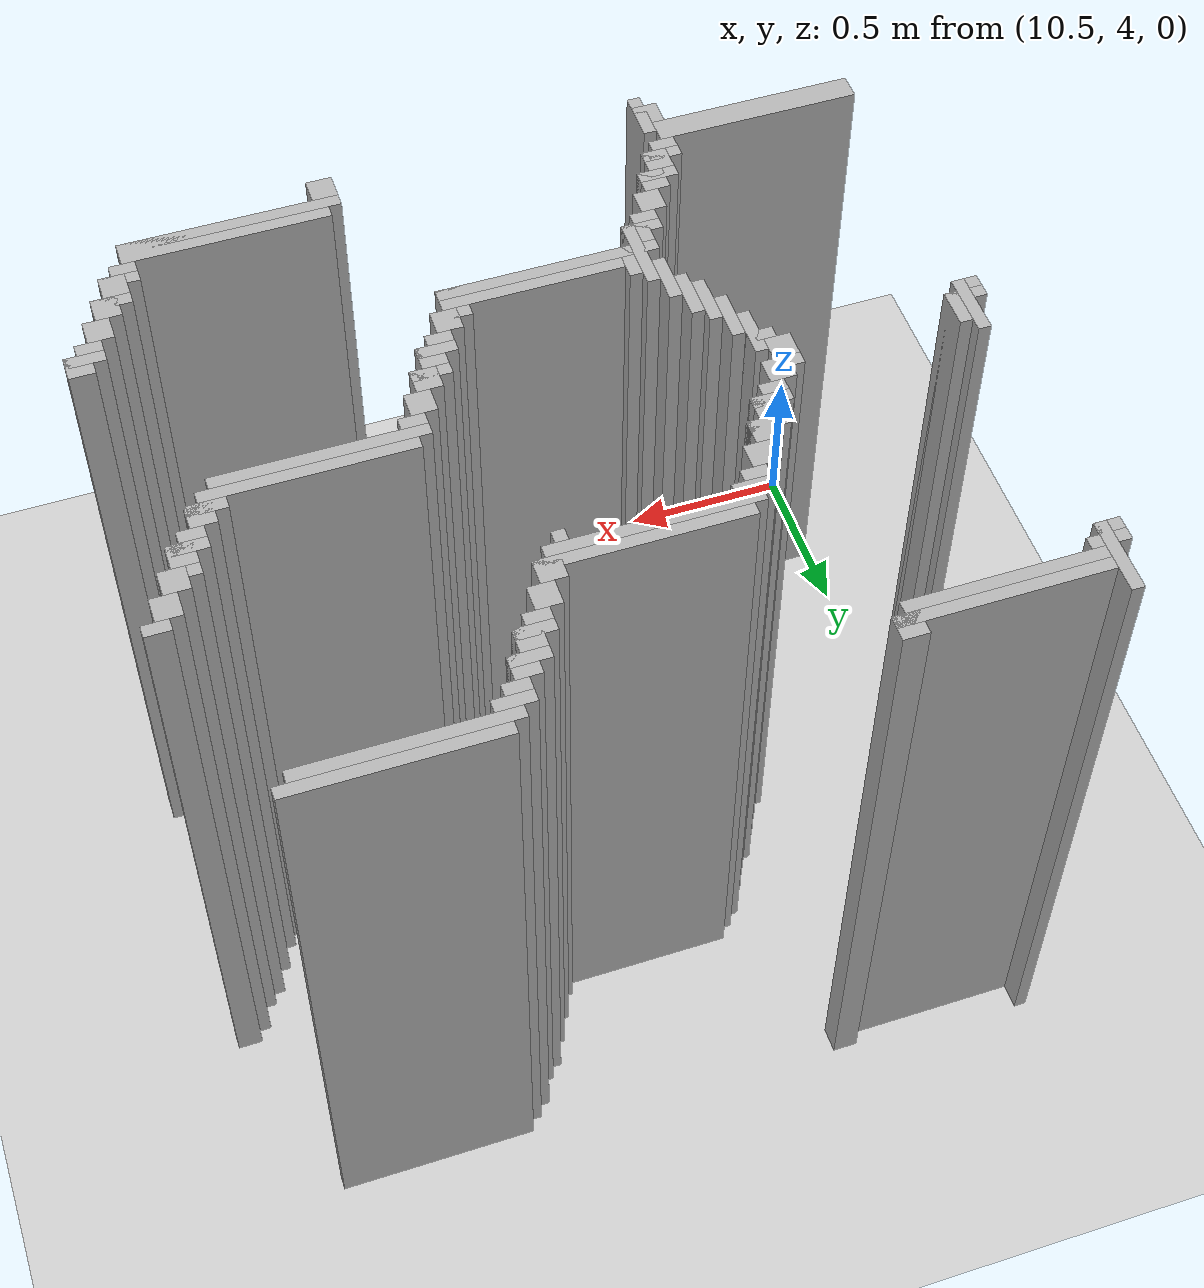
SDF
<sdf version="1.6">
 <world name="slam_world">
  <model name="ground_plane">
   <static>true</static>
   <link name="link">
    <collision name="collision">
     <geometry><plane><normal>0 0 1</normal><size>100 100</size></plane></geometry>
    </collision>
    <visual name="visual">
     <geometry><plane><normal>0 0 1</normal><size>100 100</size></plane></geometry>
     <material>
      <ambient>0.8 0.8 0.8 1</ambient>
      <diffuse>0.8 0.8 0.8 1</diffuse>
      <specular>0.8 0.8 0.8 1</specular>
     </material>
    </visual>
   </link>
  </model>
  <model name="wall_3848">
   <static>true</static>
   <pose>10.52784222737819 5.986078886310905 1.0 0 0 0</pose>
   <link name="link">
    <collision name="collision">
     <geometry><box><size>0.03480278422273782 0.2088167053364269 2.0</size></box></geometry>
    </collision>
    <visual name="visual">
     <geometry><box><size>0.03480278422273782 0.2088167053364269 2.0</size></box></geometry>
     <material><ambient>0.5 0.5 0.5 1</ambient><diffuse>0.7 0.7 0.7 1</diffuse></material>
    </visual>
   </link>
  </model>
  <model name="wall_3859">
   <static>true</static>
   <pose>11.067285382830626 6.020881670533642 1.0 0 0 0</pose>
   <link name="link">
    <collision name="collision">
     <geometry><box><size>0.06960556844547564 0.06960556844547564 2.0</size></box></geometry>
    </collision>
    <visual name="visual">
     <geometry><box><size>0.06960556844547564 0.06960556844547564 2.0</size></box></geometry>
     <material><ambient>0.5 0.5 0.5 1</ambient><diffuse>0.7 0.7 0.7 1</diffuse></material>
    </visual>
   </link>
  </model>
  <model name="wall_3873">
   <static>true</static>
   <pose>10.82366589327146 6.003480278422273 1.0 0 0 0</pose>
   <link name="link">
    <collision name="collision">
     <geometry><box><size>0.5568445475638051 0.03480278422273782 2.0</size></box></geometry>
    </collision>
    <visual name="visual">
     <geometry><box><size>0.5568445475638051 0.03480278422273782 2.0</size></box></geometry>
     <material><ambient>0.5 0.5 0.5 1</ambient><diffuse>0.7 0.7 0.7 1</diffuse></material>
    </visual>
   </link>
  </model>
  <model name="wall_3874">
   <static>true</static>
   <pose>12.28538283062645 6.003480278422273 1.0 0 0 0</pose>
   <link name="link">
    <collision name="collision">
     <geometry><box><size>0.5568445475638051 0.03480278422273782 2.0</size></box></geometry>
    </collision>
    <visual name="visual">
     <geometry><box><size>0.5568445475638051 0.03480278422273782 2.0</size></box></geometry>
     <material><ambient>0.5 0.5 0.5 1</ambient><diffuse>0.7 0.7 0.7 1</diffuse></material>
    </visual>
   </link>
  </model>
  <model name="wall_3884">
   <static>true</static>
   <pose>10.806264501160092 5.968677494199536 1.0 0 0 0</pose>
   <link name="link">
    <collision name="collision">
     <geometry><box><size>0.5220417633410672 0.03480278422273782 2.0</size></box></geometry>
    </collision>
    <visual name="visual">
     <geometry><box><size>0.5220417633410672 0.03480278422273782 2.0</size></box></geometry>
     <material><ambient>0.5 0.5 0.5 1</ambient><diffuse>0.7 0.7 0.7 1</diffuse></material>
    </visual>
   </link>
  </model>
  <model name="wall_3885">
   <static>true</static>
   <pose>12.250580046403712 5.968677494199536 1.0 0 0 0</pose>
   <link name="link">
    <collision name="collision">
     <geometry><box><size>0.5568445475638051 0.03480278422273782 2.0</size></box></geometry>
    </collision>
    <visual name="visual">
     <geometry><box><size>0.5568445475638051 0.03480278422273782 2.0</size></box></geometry>
     <material><ambient>0.5 0.5 0.5 1</ambient><diffuse>0.7 0.7 0.7 1</diffuse></material>
    </visual>
   </link>
  </model>
  <model name="wall_3895">
   <static>true</static>
   <pose>10.52784222737819 5.933874709976798 1.0 0 0 0</pose>
   <link name="link">
    <collision name="collision">
     <geometry><box><size>0.10440835266821345 0.03480278422273782 2.0</size></box></geometry>
    </collision>
    <visual name="visual">
     <geometry><box><size>0.10440835266821345 0.03480278422273782 2.0</size></box></geometry>
     <material><ambient>0.5 0.5 0.5 1</ambient><diffuse>0.7 0.7 0.7 1</diffuse></material>
    </visual>
   </link>
  </model>
  <model name="wall_3896">
   <static>true</static>
   <pose>11.989559164733178 5.933874709976798 1.0 0 0 0</pose>
   <link name="link">
    <collision name="collision">
     <geometry><box><size>0.10440835266821345 0.03480278422273782 2.0</size></box></geometry>
    </collision>
    <visual name="visual">
     <geometry><box><size>0.10440835266821345 0.03480278422273782 2.0</size></box></geometry>
     <material><ambient>0.5 0.5 0.5 1</ambient><diffuse>0.7 0.7 0.7 1</diffuse></material>
    </visual>
   </link>
  </model>
  <model name="wall_3901">
   <static>true</static>
   <pose>10.51044083526682 5.89907192575406 1.0 0 0 0</pose>
   <link name="link">
    <collision name="collision">
     <geometry><box><size>0.06960556844547564 0.03480278422273782 2.0</size></box></geometry>
    </collision>
    <visual name="visual">
     <geometry><box><size>0.06960556844547564 0.03480278422273782 2.0</size></box></geometry>
     <material><ambient>0.5 0.5 0.5 1</ambient><diffuse>0.7 0.7 0.7 1</diffuse></material>
    </visual>
   </link>
  </model>
  <model name="wall_3902">
   <static>true</static>
   <pose>11.97215777262181 5.89907192575406 1.0 0 0 0</pose>
   <link name="link">
    <collision name="collision">
     <geometry><box><size>0.06960556844547564 0.03480278422273782 2.0</size></box></geometry>
    </collision>
    <visual name="visual">
     <geometry><box><size>0.06960556844547564 0.03480278422273782 2.0</size></box></geometry>
     <material><ambient>0.5 0.5 0.5 1</ambient><diffuse>0.7 0.7 0.7 1</diffuse></material>
    </visual>
   </link>
  </model>
  <model name="wall_3912">
   <static>true</static>
   <pose>11.937354988399072 5.846867749419953 1.0 0 0 0</pose>
   <link name="link">
    <collision name="collision">
     <geometry><box><size>0.06960556844547564 0.06960556844547564 2.0</size></box></geometry>
    </collision>
    <visual name="visual">
     <geometry><box><size>0.06960556844547564 0.06960556844547564 2.0</size></box></geometry>
     <material><ambient>0.5 0.5 0.5 1</ambient><diffuse>0.7 0.7 0.7 1</diffuse></material>
    </visual>
   </link>
  </model>
  <model name="wall_3923">
   <static>true</static>
   <pose>11.919953596287703 5.8294663573085845 1.0 0 0 0</pose>
   <link name="link">
    <collision name="collision">
     <geometry><box><size>0.10440835266821345 0.03480278422273782 2.0</size></box></geometry>
    </collision>
    <visual name="visual">
     <geometry><box><size>0.10440835266821345 0.03480278422273782 2.0</size></box></geometry>
     <material><ambient>0.5 0.5 0.5 1</ambient><diffuse>0.7 0.7 0.7 1</diffuse></material>
    </visual>
   </link>
  </model>
  <model name="wall_3934">
   <static>true</static>
   <pose>11.902552204176333 5.7772621809744775 1.0 0 0 0</pose>
   <link name="link">
    <collision name="collision">
     <geometry><box><size>0.06960556844547564 0.06960556844547564 2.0</size></box></geometry>
    </collision>
    <visual name="visual">
     <geometry><box><size>0.06960556844547564 0.06960556844547564 2.0</size></box></geometry>
     <material><ambient>0.5 0.5 0.5 1</ambient><diffuse>0.7 0.7 0.7 1</diffuse></material>
    </visual>
   </link>
  </model>
  <model name="wall_3945">
   <static>true</static>
   <pose>11.885150812064964 5.759860788863109 1.0 0 0 0</pose>
   <link name="link">
    <collision name="collision">
     <geometry><box><size>0.10440835266821345 0.03480278422273782 2.0</size></box></geometry>
    </collision>
    <visual name="visual">
     <geometry><box><size>0.10440835266821345 0.03480278422273782 2.0</size></box></geometry>
     <material><ambient>0.5 0.5 0.5 1</ambient><diffuse>0.7 0.7 0.7 1</diffuse></material>
    </visual>
   </link>
  </model>
  <model name="wall_3954">
   <static>true</static>
   <pose>11.867749419953595 5.725058004640371 1.0 0 0 0</pose>
   <link name="link">
    <collision name="collision">
     <geometry><box><size>0.06960556844547564 0.03480278422273782 2.0</size></box></geometry>
    </collision>
    <visual name="visual">
     <geometry><box><size>0.06960556844547564 0.03480278422273782 2.0</size></box></geometry>
     <material><ambient>0.5 0.5 0.5 1</ambient><diffuse>0.7 0.7 0.7 1</diffuse></material>
    </visual>
   </link>
  </model>
  <model name="wall_3965">
   <static>true</static>
   <pose>11.832946635730858 5.672853828306264 1.0 0 0 0</pose>
   <link name="link">
    <collision name="collision">
     <geometry><box><size>0.06960556844547564 0.06960556844547564 2.0</size></box></geometry>
    </collision>
    <visual name="visual">
     <geometry><box><size>0.06960556844547564 0.06960556844547564 2.0</size></box></geometry>
     <material><ambient>0.5 0.5 0.5 1</ambient><diffuse>0.7 0.7 0.7 1</diffuse></material>
    </visual>
   </link>
  </model>
  <model name="wall_3976">
   <static>true</static>
   <pose>11.79814385150812 5.603248259860789 1.0 0 0 0</pose>
   <link name="link">
    <collision name="collision">
     <geometry><box><size>0.06960556844547564 0.06960556844547564 2.0</size></box></geometry>
    </collision>
    <visual name="visual">
     <geometry><box><size>0.06960556844547564 0.06960556844547564 2.0</size></box></geometry>
     <material><ambient>0.5 0.5 0.5 1</ambient><diffuse>0.7 0.7 0.7 1</diffuse></material>
    </visual>
   </link>
  </model>
  <model name="wall_3988">
   <static>true</static>
   <pose>11.554524361948955 5.58584686774942 1.0 0 0 0</pose>
   <link name="link">
    <collision name="collision">
     <geometry><box><size>0.5568445475638051 0.03480278422273782 2.0</size></box></geometry>
    </collision>
    <visual name="visual">
     <geometry><box><size>0.5568445475638051 0.03480278422273782 2.0</size></box></geometry>
     <material><ambient>0.5 0.5 0.5 1</ambient><diffuse>0.7 0.7 0.7 1</diffuse></material>
    </visual>
   </link>
  </model>
  <model name="wall_3999">
   <static>true</static>
   <pose>11.519721577726218 5.551044083526682 1.0 0 0 0</pose>
   <link name="link">
    <collision name="collision">
     <geometry><box><size>0.5568445475638051 0.03480278422273782 2.0</size></box></geometry>
    </collision>
    <visual name="visual">
     <geometry><box><size>0.5568445475638051 0.03480278422273782 2.0</size></box></geometry>
     <material><ambient>0.5 0.5 0.5 1</ambient><diffuse>0.7 0.7 0.7 1</diffuse></material>
    </visual>
   </link>
  </model>
  <model name="wall_4016">
   <static>true</static>
   <pose>11.258700696055683 5.516241299303944 1.0 0 0 0</pose>
   <link name="link">
    <collision name="collision">
     <geometry><box><size>0.10440835266821345 0.03480278422273782 2.0</size></box></geometry>
    </collision>
    <visual name="visual">
     <geometry><box><size>0.10440835266821345 0.03480278422273782 2.0</size></box></geometry>
     <material><ambient>0.5 0.5 0.5 1</ambient><diffuse>0.7 0.7 0.7 1</diffuse></material>
    </visual>
   </link>
  </model>
  <model name="wall_4017">
   <static>true</static>
   <pose>11.745939675174013 5.516241299303944 1.0 0 0 0</pose>
   <link name="link">
    <collision name="collision">
     <geometry><box><size>0.03480278422273782 0.03480278422273782 2.0</size></box></geometry>
    </collision>
    <visual name="visual">
     <geometry><box><size>0.03480278422273782 0.03480278422273782 2.0</size></box></geometry>
     <material><ambient>0.5 0.5 0.5 1</ambient><diffuse>0.7 0.7 0.7 1</diffuse></material>
    </visual>
   </link>
  </model>
  <model name="wall_4032">
   <static>true</static>
   <pose>11.241299303944315 5.481438515081206 1.0 0 0 0</pose>
   <link name="link">
    <collision name="collision">
     <geometry><box><size>0.06960556844547564 0.03480278422273782 2.0</size></box></geometry>
    </collision>
    <visual name="visual">
     <geometry><box><size>0.06960556844547564 0.03480278422273782 2.0</size></box></geometry>
     <material><ambient>0.5 0.5 0.5 1</ambient><diffuse>0.7 0.7 0.7 1</diffuse></material>
    </visual>
   </link>
  </model>
  <model name="wall_4033">
   <static>true</static>
   <pose>12.703016241299304 5.481438515081206 1.0 0 0 0</pose>
   <link name="link">
    <collision name="collision">
     <geometry><box><size>0.06960556844547564 0.03480278422273782 2.0</size></box></geometry>
    </collision>
    <visual name="visual">
     <geometry><box><size>0.06960556844547564 0.03480278422273782 2.0</size></box></geometry>
     <material><ambient>0.5 0.5 0.5 1</ambient><diffuse>0.7 0.7 0.7 1</diffuse></material>
    </visual>
   </link>
  </model>
  <model name="wall_4047">
   <static>true</static>
   <pose>11.206496519721577 5.4292343387471 1.0 0 0 0</pose>
   <link name="link">
    <collision name="collision">
     <geometry><box><size>0.06960556844547564 0.06960556844547564 2.0</size></box></geometry>
    </collision>
    <visual name="visual">
     <geometry><box><size>0.06960556844547564 0.06960556844547564 2.0</size></box></geometry>
     <material><ambient>0.5 0.5 0.5 1</ambient><diffuse>0.7 0.7 0.7 1</diffuse></material>
    </visual>
   </link>
  </model>
  <model name="wall_4048">
   <static>true</static>
   <pose>12.668213457076565 5.4292343387471 1.0 0 0 0</pose>
   <link name="link">
    <collision name="collision">
     <geometry><box><size>0.06960556844547564 0.06960556844547564 2.0</size></box></geometry>
    </collision>
    <visual name="visual">
     <geometry><box><size>0.06960556844547564 0.06960556844547564 2.0</size></box></geometry>
     <material><ambient>0.5 0.5 0.5 1</ambient><diffuse>0.7 0.7 0.7 1</diffuse></material>
    </visual>
   </link>
  </model>
  <model name="wall_4062">
   <static>true</static>
   <pose>11.17169373549884 5.359628770301624 1.0 0 0 0</pose>
   <link name="link">
    <collision name="collision">
     <geometry><box><size>0.06960556844547564 0.06960556844547564 2.0</size></box></geometry>
    </collision>
    <visual name="visual">
     <geometry><box><size>0.06960556844547564 0.06960556844547564 2.0</size></box></geometry>
     <material><ambient>0.5 0.5 0.5 1</ambient><diffuse>0.7 0.7 0.7 1</diffuse></material>
    </visual>
   </link>
  </model>
  <model name="wall_4063">
   <static>true</static>
   <pose>12.633410672853827 5.359628770301624 1.0 0 0 0</pose>
   <link name="link">
    <collision name="collision">
     <geometry><box><size>0.06960556844547564 0.06960556844547564 2.0</size></box></geometry>
    </collision>
    <visual name="visual">
     <geometry><box><size>0.06960556844547564 0.06960556844547564 2.0</size></box></geometry>
     <material><ambient>0.5 0.5 0.5 1</ambient><diffuse>0.7 0.7 0.7 1</diffuse></material>
    </visual>
   </link>
  </model>
  <model name="wall_4077">
   <static>true</static>
   <pose>11.154292343387471 5.342227378190255 1.0 0 0 0</pose>
   <link name="link">
    <collision name="collision">
     <geometry><box><size>0.10440835266821345 0.03480278422273782 2.0</size></box></geometry>
    </collision>
    <visual name="visual">
     <geometry><box><size>0.10440835266821345 0.03480278422273782 2.0</size></box></geometry>
     <material><ambient>0.5 0.5 0.5 1</ambient><diffuse>0.7 0.7 0.7 1</diffuse></material>
    </visual>
   </link>
  </model>
  <model name="wall_4078">
   <static>true</static>
   <pose>12.616009280742459 5.342227378190255 1.0 0 0 0</pose>
   <link name="link">
    <collision name="collision">
     <geometry><box><size>0.10440835266821345 0.03480278422273782 2.0</size></box></geometry>
    </collision>
    <visual name="visual">
     <geometry><box><size>0.10440835266821345 0.03480278422273782 2.0</size></box></geometry>
     <material><ambient>0.5 0.5 0.5 1</ambient><diffuse>0.7 0.7 0.7 1</diffuse></material>
    </visual>
   </link>
  </model>
  <model name="wall_4089">
   <static>true</static>
   <pose>11.1368909512761 5.290023201856148 1.0 0 0 0</pose>
   <link name="link">
    <collision name="collision">
     <geometry><box><size>0.06960556844547564 0.06960556844547564 2.0</size></box></geometry>
    </collision>
    <visual name="visual">
     <geometry><box><size>0.06960556844547564 0.06960556844547564 2.0</size></box></geometry>
     <material><ambient>0.5 0.5 0.5 1</ambient><diffuse>0.7 0.7 0.7 1</diffuse></material>
    </visual>
   </link>
  </model>
  <model name="wall_4090">
   <static>true</static>
   <pose>12.59860788863109 5.290023201856148 1.0 0 0 0</pose>
   <link name="link">
    <collision name="collision">
     <geometry><box><size>0.06960556844547564 0.06960556844547564 2.0</size></box></geometry>
    </collision>
    <visual name="visual">
     <geometry><box><size>0.06960556844547564 0.06960556844547564 2.0</size></box></geometry>
     <material><ambient>0.5 0.5 0.5 1</ambient><diffuse>0.7 0.7 0.7 1</diffuse></material>
    </visual>
   </link>
  </model>
  <model name="wall_4103">
   <static>true</static>
   <pose>11.119489559164732 5.27262180974478 1.0 0 0 0</pose>
   <link name="link">
    <collision name="collision">
     <geometry><box><size>0.10440835266821345 0.03480278422273782 2.0</size></box></geometry>
    </collision>
    <visual name="visual">
     <geometry><box><size>0.10440835266821345 0.03480278422273782 2.0</size></box></geometry>
     <material><ambient>0.5 0.5 0.5 1</ambient><diffuse>0.7 0.7 0.7 1</diffuse></material>
    </visual>
   </link>
  </model>
  <model name="wall_4104">
   <static>true</static>
   <pose>12.581206496519721 5.27262180974478 1.0 0 0 0</pose>
   <link name="link">
    <collision name="collision">
     <geometry><box><size>0.10440835266821345 0.03480278422273782 2.0</size></box></geometry>
    </collision>
    <visual name="visual">
     <geometry><box><size>0.10440835266821345 0.03480278422273782 2.0</size></box></geometry>
     <material><ambient>0.5 0.5 0.5 1</ambient><diffuse>0.7 0.7 0.7 1</diffuse></material>
    </visual>
   </link>
  </model>
  <model name="wall_4113">
   <static>true</static>
   <pose>11.102088167053363 5.237819025522041 1.0 0 0 0</pose>
   <link name="link">
    <collision name="collision">
     <geometry><box><size>0.06960556844547564 0.03480278422273782 2.0</size></box></geometry>
    </collision>
    <visual name="visual">
     <geometry><box><size>0.06960556844547564 0.03480278422273782 2.0</size></box></geometry>
     <material><ambient>0.5 0.5 0.5 1</ambient><diffuse>0.7 0.7 0.7 1</diffuse></material>
    </visual>
   </link>
  </model>
  <model name="wall_4114">
   <static>true</static>
   <pose>12.563805104408353 5.237819025522041 1.0 0 0 0</pose>
   <link name="link">
    <collision name="collision">
     <geometry><box><size>0.06960556844547564 0.03480278422273782 2.0</size></box></geometry>
    </collision>
    <visual name="visual">
     <geometry><box><size>0.06960556844547564 0.03480278422273782 2.0</size></box></geometry>
     <material><ambient>0.5 0.5 0.5 1</ambient><diffuse>0.7 0.7 0.7 1</diffuse></material>
    </visual>
   </link>
  </model>
  <model name="wall_4125">
   <static>true</static>
   <pose>10.52784222737819 5.133410672853828 1.0 0 0 0</pose>
   <link name="link">
    <collision name="collision">
     <geometry><box><size>0.03480278422273782 0.17401392111368907 2.0</size></box></geometry>
    </collision>
    <visual name="visual">
     <geometry><box><size>0.03480278422273782 0.17401392111368907 2.0</size></box></geometry>
     <material><ambient>0.5 0.5 0.5 1</ambient><diffuse>0.7 0.7 0.7 1</diffuse></material>
    </visual>
   </link>
  </model>
  <model name="wall_4126">
   <static>true</static>
   <pose>11.067285382830626 5.185614849187935 1.0 0 0 0</pose>
   <link name="link">
    <collision name="collision">
     <geometry><box><size>0.06960556844547564 0.06960556844547564 2.0</size></box></geometry>
    </collision>
    <visual name="visual">
     <geometry><box><size>0.06960556844547564 0.06960556844547564 2.0</size></box></geometry>
     <material><ambient>0.5 0.5 0.5 1</ambient><diffuse>0.7 0.7 0.7 1</diffuse></material>
    </visual>
   </link>
  </model>
  <model name="wall_4127">
   <static>true</static>
   <pose>12.529002320185615 5.185614849187935 1.0 0 0 0</pose>
   <link name="link">
    <collision name="collision">
     <geometry><box><size>0.06960556844547564 0.06960556844547564 2.0</size></box></geometry>
    </collision>
    <visual name="visual">
     <geometry><box><size>0.06960556844547564 0.06960556844547564 2.0</size></box></geometry>
     <material><ambient>0.5 0.5 0.5 1</ambient><diffuse>0.7 0.7 0.7 1</diffuse></material>
    </visual>
   </link>
  </model>
  <model name="wall_4140">
   <static>true</static>
   <pose>10.562645011600928 5.133410672853828 1.0 0 0 0</pose>
   <link name="link">
    <collision name="collision">
     <geometry><box><size>0.03480278422273782 0.10440835266821345 2.0</size></box></geometry>
    </collision>
    <visual name="visual">
     <geometry><box><size>0.03480278422273782 0.10440835266821345 2.0</size></box></geometry>
     <material><ambient>0.5 0.5 0.5 1</ambient><diffuse>0.7 0.7 0.7 1</diffuse></material>
    </visual>
   </link>
  </model>
  <model name="wall_4141">
   <static>true</static>
   <pose>11.049883990719257 5.168213457076566 1.0 0 0 0</pose>
   <link name="link">
    <collision name="collision">
     <geometry><box><size>0.10440835266821345 0.03480278422273782 2.0</size></box></geometry>
    </collision>
    <visual name="visual">
     <geometry><box><size>0.10440835266821345 0.03480278422273782 2.0</size></box></geometry>
     <material><ambient>0.5 0.5 0.5 1</ambient><diffuse>0.7 0.7 0.7 1</diffuse></material>
    </visual>
   </link>
  </model>
  <model name="wall_4142">
   <static>true</static>
   <pose>12.511600928074245 5.168213457076566 1.0 0 0 0</pose>
   <link name="link">
    <collision name="collision">
     <geometry><box><size>0.10440835266821345 0.03480278422273782 2.0</size></box></geometry>
    </collision>
    <visual name="visual">
     <geometry><box><size>0.10440835266821345 0.03480278422273782 2.0</size></box></geometry>
     <material><ambient>0.5 0.5 0.5 1</ambient><diffuse>0.7 0.7 0.7 1</diffuse></material>
    </visual>
   </link>
  </model>
  <model name="wall_4154">
   <static>true</static>
   <pose>11.032482598607888 5.1160092807424595 1.0 0 0 0</pose>
   <link name="link">
    <collision name="collision">
     <geometry><box><size>0.06960556844547564 0.06960556844547564 2.0</size></box></geometry>
    </collision>
    <visual name="visual">
     <geometry><box><size>0.06960556844547564 0.06960556844547564 2.0</size></box></geometry>
     <material><ambient>0.5 0.5 0.5 1</ambient><diffuse>0.7 0.7 0.7 1</diffuse></material>
    </visual>
   </link>
  </model>
  <model name="wall_4155">
   <static>true</static>
   <pose>12.250580046403712 5.133410672853828 1.0 0 0 0</pose>
   <link name="link">
    <collision name="collision">
     <geometry><box><size>0.5568445475638051 0.03480278422273782 2.0</size></box></geometry>
    </collision>
    <visual name="visual">
     <geometry><box><size>0.5568445475638051 0.03480278422273782 2.0</size></box></geometry>
     <material><ambient>0.5 0.5 0.5 1</ambient><diffuse>0.7 0.7 0.7 1</diffuse></material>
    </visual>
   </link>
  </model>
  <model name="wall_4165">
   <static>true</static>
   <pose>10.52784222737819 5.09860788863109 1.0 0 0 0</pose>
   <link name="link">
    <collision name="collision">
     <geometry><box><size>0.10440835266821345 0.03480278422273782 2.0</size></box></geometry>
    </collision>
    <visual name="visual">
     <geometry><box><size>0.10440835266821345 0.03480278422273782 2.0</size></box></geometry>
     <material><ambient>0.5 0.5 0.5 1</ambient><diffuse>0.7 0.7 0.7 1</diffuse></material>
    </visual>
   </link>
  </model>
  <model name="wall_4166">
   <static>true</static>
   <pose>11.084686774941995 5.046403712296984 1.0 0 0 0</pose>
   <link name="link">
    <collision name="collision">
     <geometry><box><size>0.03480278422273782 0.13921113689095127 2.0</size></box></geometry>
    </collision>
    <visual name="visual">
     <geometry><box><size>0.03480278422273782 0.13921113689095127 2.0</size></box></geometry>
     <material><ambient>0.5 0.5 0.5 1</ambient><diffuse>0.7 0.7 0.7 1</diffuse></material>
    </visual>
   </link>
  </model>
  <model name="wall_4167">
   <static>true</static>
   <pose>12.215777262180975 5.09860788863109 1.0 0 0 0</pose>
   <link name="link">
    <collision name="collision">
     <geometry><box><size>0.5568445475638051 0.03480278422273782 2.0</size></box></geometry>
    </collision>
    <visual name="visual">
     <geometry><box><size>0.5568445475638051 0.03480278422273782 2.0</size></box></geometry>
     <material><ambient>0.5 0.5 0.5 1</ambient><diffuse>0.7 0.7 0.7 1</diffuse></material>
    </visual>
   </link>
  </model>
  <model name="wall_4180">
   <static>true</static>
   <pose>10.51044083526682 5.0638051044083525 1.0 0 0 0</pose>
   <link name="link">
    <collision name="collision">
     <geometry><box><size>0.06960556844547564 0.03480278422273782 2.0</size></box></geometry>
    </collision>
    <visual name="visual">
     <geometry><box><size>0.06960556844547564 0.03480278422273782 2.0</size></box></geometry>
     <material><ambient>0.5 0.5 0.5 1</ambient><diffuse>0.7 0.7 0.7 1</diffuse></material>
    </visual>
   </link>
  </model>
  <model name="wall_4181">
   <static>true</static>
   <pose>11.067285382830626 5.0638051044083525 1.0 0 0 0</pose>
   <link name="link">
    <collision name="collision">
     <geometry><box><size>0.06960556844547564 0.03480278422273782 2.0</size></box></geometry>
    </collision>
    <visual name="visual">
     <geometry><box><size>0.06960556844547564 0.03480278422273782 2.0</size></box></geometry>
     <material><ambient>0.5 0.5 0.5 1</ambient><diffuse>0.7 0.7 0.7 1</diffuse></material>
    </visual>
   </link>
  </model>
  <model name="wall_4182">
   <static>true</static>
   <pose>11.97215777262181 5.0638051044083525 1.0 0 0 0</pose>
   <link name="link">
    <collision name="collision">
     <geometry><box><size>0.06960556844547564 0.03480278422273782 2.0</size></box></geometry>
    </collision>
    <visual name="visual">
     <geometry><box><size>0.06960556844547564 0.03480278422273782 2.0</size></box></geometry>
     <material><ambient>0.5 0.5 0.5 1</ambient><diffuse>0.7 0.7 0.7 1</diffuse></material>
    </visual>
   </link>
  </model>
  <model name="wall_4196">
   <static>true</static>
   <pose>11.119489559164732 4.976798143851508 1.0 0 0 0</pose>
   <link name="link">
    <collision name="collision">
     <geometry><box><size>0.03480278422273782 0.13921113689095127 2.0</size></box></geometry>
    </collision>
    <visual name="visual">
     <geometry><box><size>0.03480278422273782 0.13921113689095127 2.0</size></box></geometry>
     <material><ambient>0.5 0.5 0.5 1</ambient><diffuse>0.7 0.7 0.7 1</diffuse></material>
    </visual>
   </link>
  </model>
  <model name="wall_4197">
   <static>true</static>
   <pose>11.937354988399072 5.0116009280742455 1.0 0 0 0</pose>
   <link name="link">
    <collision name="collision">
     <geometry><box><size>0.06960556844547564 0.06960556844547564 2.0</size></box></geometry>
    </collision>
    <visual name="visual">
     <geometry><box><size>0.06960556844547564 0.06960556844547564 2.0</size></box></geometry>
     <material><ambient>0.5 0.5 0.5 1</ambient><diffuse>0.7 0.7 0.7 1</diffuse></material>
    </visual>
   </link>
  </model>
  <model name="wall_4211">
   <static>true</static>
   <pose>11.154292343387471 4.907192575406032 1.0 0 0 0</pose>
   <link name="link">
    <collision name="collision">
     <geometry><box><size>0.03480278422273782 0.13921113689095127 2.0</size></box></geometry>
    </collision>
    <visual name="visual">
     <geometry><box><size>0.03480278422273782 0.13921113689095127 2.0</size></box></geometry>
     <material><ambient>0.5 0.5 0.5 1</ambient><diffuse>0.7 0.7 0.7 1</diffuse></material>
    </visual>
   </link>
  </model>
  <model name="wall_4212">
   <static>true</static>
   <pose>11.902552204176333 4.94199535962877 1.0 0 0 0</pose>
   <link name="link">
    <collision name="collision">
     <geometry><box><size>0.06960556844547564 0.06960556844547564 2.0</size></box></geometry>
    </collision>
    <visual name="visual">
     <geometry><box><size>0.06960556844547564 0.06960556844547564 2.0</size></box></geometry>
     <material><ambient>0.5 0.5 0.5 1</ambient><diffuse>0.7 0.7 0.7 1</diffuse></material>
    </visual>
   </link>
  </model>
  <model name="wall_4226">
   <static>true</static>
   <pose>11.189095127610209 4.872389791183294 1.0 0 0 0</pose>
   <link name="link">
    <collision name="collision">
     <geometry><box><size>0.03480278422273782 0.13921113689095127 2.0</size></box></geometry>
    </collision>
    <visual name="visual">
     <geometry><box><size>0.03480278422273782 0.13921113689095127 2.0</size></box></geometry>
     <material><ambient>0.5 0.5 0.5 1</ambient><diffuse>0.7 0.7 0.7 1</diffuse></material>
    </visual>
   </link>
  </model>
  <model name="wall_4227">
   <static>true</static>
   <pose>11.885150812064964 4.924593967517401 1.0 0 0 0</pose>
   <link name="link">
    <collision name="collision">
     <geometry><box><size>0.10440835266821345 0.03480278422273782 2.0</size></box></geometry>
    </collision>
    <visual name="visual">
     <geometry><box><size>0.10440835266821345 0.03480278422273782 2.0</size></box></geometry>
     <material><ambient>0.5 0.5 0.5 1</ambient><diffuse>0.7 0.7 0.7 1</diffuse></material>
    </visual>
   </link>
  </model>
  <model name="wall_4239">
   <static>true</static>
   <pose>11.867749419953595 4.872389791183294 1.0 0 0 0</pose>
   <link name="link">
    <collision name="collision">
     <geometry><box><size>0.06960556844547564 0.06960556844547564 2.0</size></box></geometry>
    </collision>
    <visual name="visual">
     <geometry><box><size>0.06960556844547564 0.06960556844547564 2.0</size></box></geometry>
     <material><ambient>0.5 0.5 0.5 1</ambient><diffuse>0.7 0.7 0.7 1</diffuse></material>
    </visual>
   </link>
  </model>
  <model name="wall_4252">
   <static>true</static>
   <pose>11.223897911832946 4.802784222737819 1.0 0 0 0</pose>
   <link name="link">
    <collision name="collision">
     <geometry><box><size>0.03480278422273782 0.13921113689095127 2.0</size></box></geometry>
    </collision>
    <visual name="visual">
     <geometry><box><size>0.03480278422273782 0.13921113689095127 2.0</size></box></geometry>
     <material><ambient>0.5 0.5 0.5 1</ambient><diffuse>0.7 0.7 0.7 1</diffuse></material>
    </visual>
   </link>
  </model>
  <model name="wall_4253">
   <static>true</static>
   <pose>11.850348027842227 4.854988399071925 1.0 0 0 0</pose>
   <link name="link">
    <collision name="collision">
     <geometry><box><size>0.10440835266821345 0.03480278422273782 2.0</size></box></geometry>
    </collision>
    <visual name="visual">
     <geometry><box><size>0.10440835266821345 0.03480278422273782 2.0</size></box></geometry>
     <material><ambient>0.5 0.5 0.5 1</ambient><diffuse>0.7 0.7 0.7 1</diffuse></material>
    </visual>
   </link>
  </model>
  <model name="wall_4263">
   <static>true</static>
   <pose>11.832946635730858 4.820185614849188 1.0 0 0 0</pose>
   <link name="link">
    <collision name="collision">
     <geometry><box><size>0.06960556844547564 0.03480278422273782 2.0</size></box></geometry>
    </collision>
    <visual name="visual">
     <geometry><box><size>0.06960556844547564 0.03480278422273782 2.0</size></box></geometry>
     <material><ambient>0.5 0.5 0.5 1</ambient><diffuse>0.7 0.7 0.7 1</diffuse></material>
    </visual>
   </link>
  </model>
  <model name="wall_4276">
   <static>true</static>
   <pose>11.258700696055683 4.698375870069605 1.0 0 0 0</pose>
   <link name="link">
    <collision name="collision">
     <geometry><box><size>0.03480278422273782 0.2088167053364269 2.0</size></box></geometry>
    </collision>
    <visual name="visual">
     <geometry><box><size>0.03480278422273782 0.2088167053364269 2.0</size></box></geometry>
     <material><ambient>0.5 0.5 0.5 1</ambient><diffuse>0.7 0.7 0.7 1</diffuse></material>
    </visual>
   </link>
  </model>
  <model name="wall_4277">
   <static>true</static>
   <pose>11.79814385150812 4.767981438515081 1.0 0 0 0</pose>
   <link name="link">
    <collision name="collision">
     <geometry><box><size>0.06960556844547564 0.06960556844547564 2.0</size></box></geometry>
    </collision>
    <visual name="visual">
     <geometry><box><size>0.06960556844547564 0.06960556844547564 2.0</size></box></geometry>
     <material><ambient>0.5 0.5 0.5 1</ambient><diffuse>0.7 0.7 0.7 1</diffuse></material>
    </visual>
   </link>
  </model>
  <model name="wall_4288">
   <static>true</static>
   <pose>11.293503480278423 4.715777262180974 1.0 0 0 0</pose>
   <link name="link">
    <collision name="collision">
     <geometry><box><size>0.03480278422273782 0.10440835266821345 2.0</size></box></geometry>
    </collision>
    <visual name="visual">
     <geometry><box><size>0.03480278422273782 0.10440835266821345 2.0</size></box></geometry>
     <material><ambient>0.5 0.5 0.5 1</ambient><diffuse>0.7 0.7 0.7 1</diffuse></material>
    </visual>
   </link>
  </model>
  <model name="wall_4289">
   <static>true</static>
   <pose>11.780742459396752 4.750580046403712 1.0 0 0 0</pose>
   <link name="link">
    <collision name="collision">
     <geometry><box><size>0.10440835266821345 0.03480278422273782 2.0</size></box></geometry>
    </collision>
    <visual name="visual">
     <geometry><box><size>0.10440835266821345 0.03480278422273782 2.0</size></box></geometry>
     <material><ambient>0.5 0.5 0.5 1</ambient><diffuse>0.7 0.7 0.7 1</diffuse></material>
    </visual>
   </link>
  </model>
  <model name="wall_4301">
   <static>true</static>
   <pose>11.554524361948955 4.698375870069605 1.0 0 0 0</pose>
   <link name="link">
    <collision name="collision">
     <geometry><box><size>0.4872389791183295 0.06960556844547564 2.0</size></box></geometry>
    </collision>
    <visual name="visual">
     <geometry><box><size>0.4872389791183295 0.06960556844547564 2.0</size></box></geometry>
     <material><ambient>0.5 0.5 0.5 1</ambient><diffuse>0.7 0.7 0.7 1</diffuse></material>
    </visual>
   </link>
  </model>
  <model name="wall_4312">
   <static>true</static>
   <pose>11.502320185614849 4.6809744779582365 1.0 0 0 0</pose>
   <link name="link">
    <collision name="collision">
     <geometry><box><size>0.5916473317865429 0.03480278422273782 2.0</size></box></geometry>
    </collision>
    <visual name="visual">
     <geometry><box><size>0.5916473317865429 0.03480278422273782 2.0</size></box></geometry>
     <material><ambient>0.5 0.5 0.5 1</ambient><diffuse>0.7 0.7 0.7 1</diffuse></material>
    </visual>
   </link>
  </model>
  <model name="wall_4324">
   <static>true</static>
   <pose>11.241299303944315 4.6287703016241295 1.0 0 0 0</pose>
   <link name="link">
    <collision name="collision">
     <geometry><box><size>0.06960556844547564 0.06960556844547564 2.0</size></box></geometry>
    </collision>
    <visual name="visual">
     <geometry><box><size>0.06960556844547564 0.06960556844547564 2.0</size></box></geometry>
     <material><ambient>0.5 0.5 0.5 1</ambient><diffuse>0.7 0.7 0.7 1</diffuse></material>
    </visual>
   </link>
  </model>
  <model name="wall_4325">
   <static>true</static>
   <pose>12.703016241299304 4.6287703016241295 1.0 0 0 0</pose>
   <link name="link">
    <collision name="collision">
     <geometry><box><size>0.06960556844547564 0.06960556844547564 2.0</size></box></geometry>
    </collision>
    <visual name="visual">
     <geometry><box><size>0.06960556844547564 0.06960556844547564 2.0</size></box></geometry>
     <material><ambient>0.5 0.5 0.5 1</ambient><diffuse>0.7 0.7 0.7 1</diffuse></material>
    </visual>
   </link>
  </model>
  <model name="wall_4337">
   <static>true</static>
   <pose>11.223897911832946 4.611368909512761 1.0 0 0 0</pose>
   <link name="link">
    <collision name="collision">
     <geometry><box><size>0.10440835266821345 0.03480278422273782 2.0</size></box></geometry>
    </collision>
    <visual name="visual">
     <geometry><box><size>0.10440835266821345 0.03480278422273782 2.0</size></box></geometry>
     <material><ambient>0.5 0.5 0.5 1</ambient><diffuse>0.7 0.7 0.7 1</diffuse></material>
    </visual>
   </link>
  </model>
  <model name="wall_4338">
   <static>true</static>
   <pose>12.685614849187935 4.611368909512761 1.0 0 0 0</pose>
   <link name="link">
    <collision name="collision">
     <geometry><box><size>0.10440835266821345 0.03480278422273782 2.0</size></box></geometry>
    </collision>
    <visual name="visual">
     <geometry><box><size>0.10440835266821345 0.03480278422273782 2.0</size></box></geometry>
     <material><ambient>0.5 0.5 0.5 1</ambient><diffuse>0.7 0.7 0.7 1</diffuse></material>
    </visual>
   </link>
  </model>
  <model name="wall_4346">
   <static>true</static>
   <pose>11.206496519721577 4.576566125290023 1.0 0 0 0</pose>
   <link name="link">
    <collision name="collision">
     <geometry><box><size>0.06960556844547564 0.03480278422273782 2.0</size></box></geometry>
    </collision>
    <visual name="visual">
     <geometry><box><size>0.06960556844547564 0.03480278422273782 2.0</size></box></geometry>
     <material><ambient>0.5 0.5 0.5 1</ambient><diffuse>0.7 0.7 0.7 1</diffuse></material>
    </visual>
   </link>
  </model>
  <model name="wall_4347">
   <static>true</static>
   <pose>12.668213457076565 4.576566125290023 1.0 0 0 0</pose>
   <link name="link">
    <collision name="collision">
     <geometry><box><size>0.06960556844547564 0.03480278422273782 2.0</size></box></geometry>
    </collision>
    <visual name="visual">
     <geometry><box><size>0.06960556844547564 0.03480278422273782 2.0</size></box></geometry>
     <material><ambient>0.5 0.5 0.5 1</ambient><diffuse>0.7 0.7 0.7 1</diffuse></material>
    </visual>
   </link>
  </model>
  <model name="wall_4358">
   <static>true</static>
   <pose>11.17169373549884 4.524361948955916 1.0 0 0 0</pose>
   <link name="link">
    <collision name="collision">
     <geometry><box><size>0.06960556844547564 0.06960556844547564 2.0</size></box></geometry>
    </collision>
    <visual name="visual">
     <geometry><box><size>0.06960556844547564 0.06960556844547564 2.0</size></box></geometry>
     <material><ambient>0.5 0.5 0.5 1</ambient><diffuse>0.7 0.7 0.7 1</diffuse></material>
    </visual>
   </link>
  </model>
  <model name="wall_4359">
   <static>true</static>
   <pose>12.633410672853827 4.524361948955916 1.0 0 0 0</pose>
   <link name="link">
    <collision name="collision">
     <geometry><box><size>0.06960556844547564 0.06960556844547564 2.0</size></box></geometry>
    </collision>
    <visual name="visual">
     <geometry><box><size>0.06960556844547564 0.06960556844547564 2.0</size></box></geometry>
     <material><ambient>0.5 0.5 0.5 1</ambient><diffuse>0.7 0.7 0.7 1</diffuse></material>
    </visual>
   </link>
  </model>
  <model name="wall_4371">
   <static>true</static>
   <pose>11.1368909512761 4.454756380510441 1.0 0 0 0</pose>
   <link name="link">
    <collision name="collision">
     <geometry><box><size>0.06960556844547564 0.06960556844547564 2.0</size></box></geometry>
    </collision>
    <visual name="visual">
     <geometry><box><size>0.06960556844547564 0.06960556844547564 2.0</size></box></geometry>
     <material><ambient>0.5 0.5 0.5 1</ambient><diffuse>0.7 0.7 0.7 1</diffuse></material>
    </visual>
   </link>
  </model>
  <model name="wall_4372">
   <static>true</static>
   <pose>12.59860788863109 4.454756380510441 1.0 0 0 0</pose>
   <link name="link">
    <collision name="collision">
     <geometry><box><size>0.06960556844547564 0.06960556844547564 2.0</size></box></geometry>
    </collision>
    <visual name="visual">
     <geometry><box><size>0.06960556844547564 0.06960556844547564 2.0</size></box></geometry>
     <material><ambient>0.5 0.5 0.5 1</ambient><diffuse>0.7 0.7 0.7 1</diffuse></material>
    </visual>
   </link>
  </model>
  <model name="wall_4384">
   <static>true</static>
   <pose>11.119489559164732 4.437354988399072 1.0 0 0 0</pose>
   <link name="link">
    <collision name="collision">
     <geometry><box><size>0.10440835266821345 0.03480278422273782 2.0</size></box></geometry>
    </collision>
    <visual name="visual">
     <geometry><box><size>0.10440835266821345 0.03480278422273782 2.0</size></box></geometry>
     <material><ambient>0.5 0.5 0.5 1</ambient><diffuse>0.7 0.7 0.7 1</diffuse></material>
    </visual>
   </link>
  </model>
  <model name="wall_4385">
   <static>true</static>
   <pose>12.581206496519721 4.437354988399072 1.0 0 0 0</pose>
   <link name="link">
    <collision name="collision">
     <geometry><box><size>0.10440835266821345 0.03480278422273782 2.0</size></box></geometry>
    </collision>
    <visual name="visual">
     <geometry><box><size>0.10440835266821345 0.03480278422273782 2.0</size></box></geometry>
     <material><ambient>0.5 0.5 0.5 1</ambient><diffuse>0.7 0.7 0.7 1</diffuse></material>
    </visual>
   </link>
  </model>
  <model name="wall_4392">
   <static>true</static>
   <pose>11.102088167053363 4.385150812064965 1.0 0 0 0</pose>
   <link name="link">
    <collision name="collision">
     <geometry><box><size>0.06960556844547564 0.06960556844547564 2.0</size></box></geometry>
    </collision>
    <visual name="visual">
     <geometry><box><size>0.06960556844547564 0.06960556844547564 2.0</size></box></geometry>
     <material><ambient>0.5 0.5 0.5 1</ambient><diffuse>0.7 0.7 0.7 1</diffuse></material>
    </visual>
   </link>
  </model>
  <model name="wall_4393">
   <static>true</static>
   <pose>12.563805104408353 4.385150812064965 1.0 0 0 0</pose>
   <link name="link">
    <collision name="collision">
     <geometry><box><size>0.06960556844547564 0.06960556844547564 2.0</size></box></geometry>
    </collision>
    <visual name="visual">
     <geometry><box><size>0.06960556844547564 0.06960556844547564 2.0</size></box></geometry>
     <material><ambient>0.5 0.5 0.5 1</ambient><diffuse>0.7 0.7 0.7 1</diffuse></material>
    </visual>
   </link>
  </model>
  <model name="wall_4403">
   <static>true</static>
   <pose>11.084686774941995 4.367749419953596 1.0 0 0 0</pose>
   <link name="link">
    <collision name="collision">
     <geometry><box><size>0.10440835266821345 0.03480278422273782 2.0</size></box></geometry>
    </collision>
    <visual name="visual">
     <geometry><box><size>0.10440835266821345 0.03480278422273782 2.0</size></box></geometry>
     <material><ambient>0.5 0.5 0.5 1</ambient><diffuse>0.7 0.7 0.7 1</diffuse></material>
    </visual>
   </link>
  </model>
  <model name="wall_4404">
   <static>true</static>
   <pose>12.546403712296984 4.367749419953596 1.0 0 0 0</pose>
   <link name="link">
    <collision name="collision">
     <geometry><box><size>0.10440835266821345 0.03480278422273782 2.0</size></box></geometry>
    </collision>
    <visual name="visual">
     <geometry><box><size>0.10440835266821345 0.03480278422273782 2.0</size></box></geometry>
     <material><ambient>0.5 0.5 0.5 1</ambient><diffuse>0.7 0.7 0.7 1</diffuse></material>
    </visual>
   </link>
  </model>
  <model name="wall_4411">
   <static>true</static>
   <pose>11.067285382830626 4.332946635730858 1.0 0 0 0</pose>
   <link name="link">
    <collision name="collision">
     <geometry><box><size>0.06960556844547564 0.03480278422273782 2.0</size></box></geometry>
    </collision>
    <visual name="visual">
     <geometry><box><size>0.06960556844547564 0.03480278422273782 2.0</size></box></geometry>
     <material><ambient>0.5 0.5 0.5 1</ambient><diffuse>0.7 0.7 0.7 1</diffuse></material>
    </visual>
   </link>
  </model>
  <model name="wall_4412">
   <static>true</static>
   <pose>12.529002320185615 4.332946635730858 1.0 0 0 0</pose>
   <link name="link">
    <collision name="collision">
     <geometry><box><size>0.06960556844547564 0.03480278422273782 2.0</size></box></geometry>
    </collision>
    <visual name="visual">
     <geometry><box><size>0.06960556844547564 0.03480278422273782 2.0</size></box></geometry>
     <material><ambient>0.5 0.5 0.5 1</ambient><diffuse>0.7 0.7 0.7 1</diffuse></material>
    </visual>
   </link>
  </model>
  <model name="wall_4424">
   <static>true</static>
   <pose>10.788863109048723 4.280742459396752 1.0 0 0 0</pose>
   <link name="link">
    <collision name="collision">
     <geometry><box><size>0.5568445475638051 0.06960556844547564 2.0</size></box></geometry>
    </collision>
    <visual name="visual">
     <geometry><box><size>0.5568445475638051 0.06960556844547564 2.0</size></box></geometry>
     <material><ambient>0.5 0.5 0.5 1</ambient><diffuse>0.7 0.7 0.7 1</diffuse></material>
    </visual>
   </link>
  </model>
  <model name="wall_4425">
   <static>true</static>
   <pose>12.250580046403712 4.280742459396752 1.0 0 0 0</pose>
   <link name="link">
    <collision name="collision">
     <geometry><box><size>0.5568445475638051 0.06960556844547564 2.0</size></box></geometry>
    </collision>
    <visual name="visual">
     <geometry><box><size>0.5568445475638051 0.06960556844547564 2.0</size></box></geometry>
     <material><ambient>0.5 0.5 0.5 1</ambient><diffuse>0.7 0.7 0.7 1</diffuse></material>
    </visual>
   </link>
  </model>
  <model name="wall_4437">
   <static>true</static>
   <pose>11.084686774941995 4.211136890951276 1.0 0 0 0</pose>
   <link name="link">
    <collision name="collision">
     <geometry><box><size>0.03480278422273782 0.13921113689095127 2.0</size></box></geometry>
    </collision>
    <visual name="visual">
     <geometry><box><size>0.03480278422273782 0.13921113689095127 2.0</size></box></geometry>
     <material><ambient>0.5 0.5 0.5 1</ambient><diffuse>0.7 0.7 0.7 1</diffuse></material>
    </visual>
   </link>
  </model>
  <model name="wall_4438">
   <static>true</static>
   <pose>12.233178654292344 4.263341067285383 1.0 0 0 0</pose>
   <link name="link">
    <collision name="collision">
     <geometry><box><size>0.5916473317865429 0.03480278422273782 2.0</size></box></geometry>
    </collision>
    <visual name="visual">
     <geometry><box><size>0.5916473317865429 0.03480278422273782 2.0</size></box></geometry>
     <material><ambient>0.5 0.5 0.5 1</ambient><diffuse>0.7 0.7 0.7 1</diffuse></material>
    </visual>
   </link>
  </model>
  <model name="wall_4451">
   <static>true</static>
   <pose>11.067285382830626 4.211136890951276 1.0 0 0 0</pose>
   <link name="link">
    <collision name="collision">
     <geometry><box><size>0.06960556844547564 0.06960556844547564 2.0</size></box></geometry>
    </collision>
    <visual name="visual">
     <geometry><box><size>0.06960556844547564 0.06960556844547564 2.0</size></box></geometry>
     <material><ambient>0.5 0.5 0.5 1</ambient><diffuse>0.7 0.7 0.7 1</diffuse></material>
    </visual>
   </link>
  </model>
  <model name="wall_4452">
   <static>true</static>
   <pose>11.97215777262181 4.211136890951276 1.0 0 0 0</pose>
   <link name="link">
    <collision name="collision">
     <geometry><box><size>0.06960556844547564 0.06960556844547564 2.0</size></box></geometry>
    </collision>
    <visual name="visual">
     <geometry><box><size>0.06960556844547564 0.06960556844547564 2.0</size></box></geometry>
     <material><ambient>0.5 0.5 0.5 1</ambient><diffuse>0.7 0.7 0.7 1</diffuse></material>
    </visual>
   </link>
  </model>
 </world>
</sdf>
